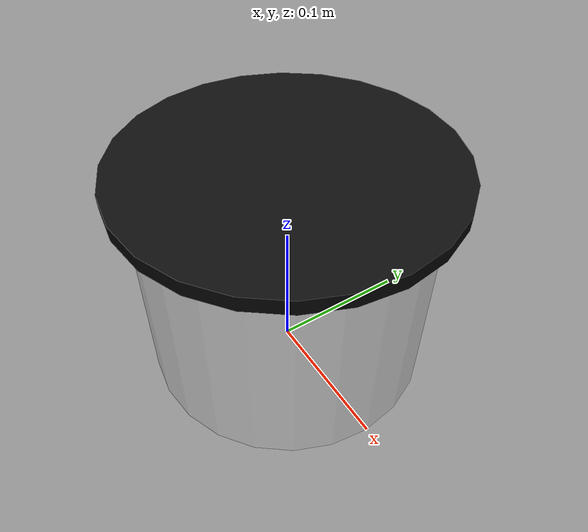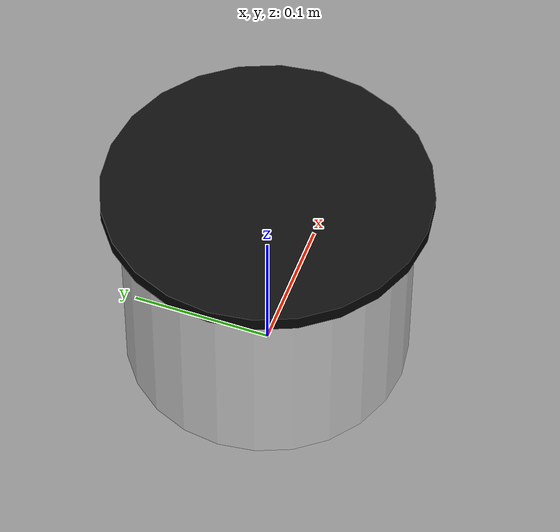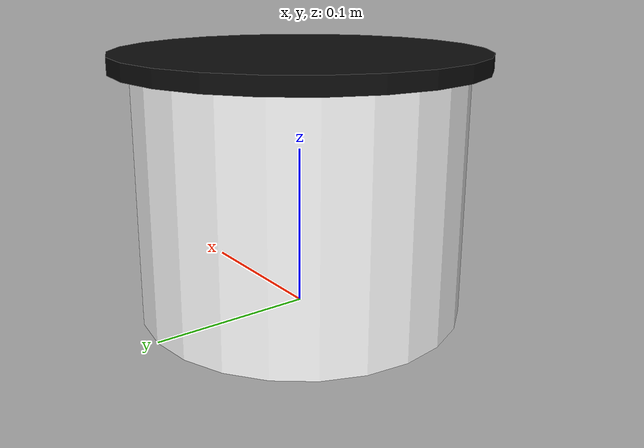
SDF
<?xml version="1.0"?>
<sdf version="1.9">
  <model name="recon_bucket">
    <static>true</static>
    <link name="link">
      <visual name="body">
        <pose>0 0 0.075 0 0 0</pose>
        <geometry><cylinder><radius>0.10</radius><length>0.15</length></cylinder></geometry>
        <material><ambient>1 1 1 1</ambient><diffuse>1 1 1 1</diffuse></material>
      </visual>
      <visual name="rim">
        <pose>0 0 0.155 0 0 0</pose>
        <geometry><cylinder><radius>0.112</radius><length>0.01</length></cylinder></geometry>
        <material><ambient>0.05 0.05 0.05 1</ambient><diffuse>0.05 0.05 0.05 1</diffuse></material>
      </visual>
      <collision name="collision">
        <pose>0 0 0.075 0 0 0</pose>
        <geometry><cylinder><radius>0.10</radius><length>0.15</length></cylinder></geometry>
      </collision>
    </link>
  </model>
</sdf>
